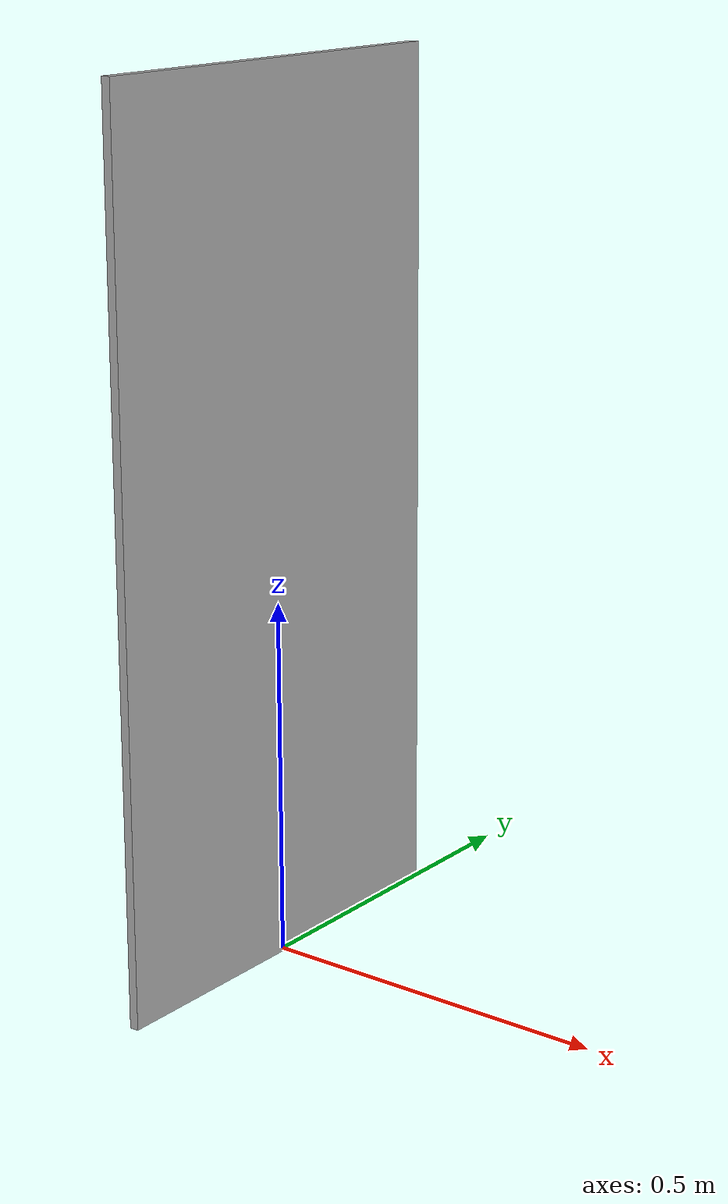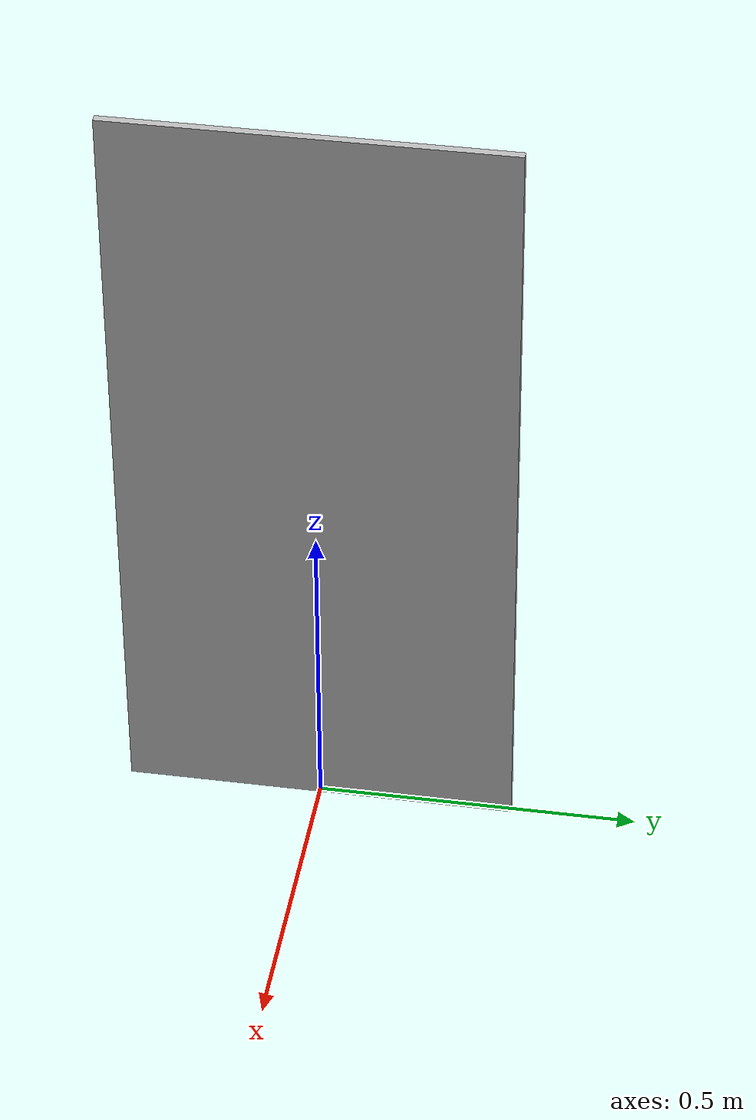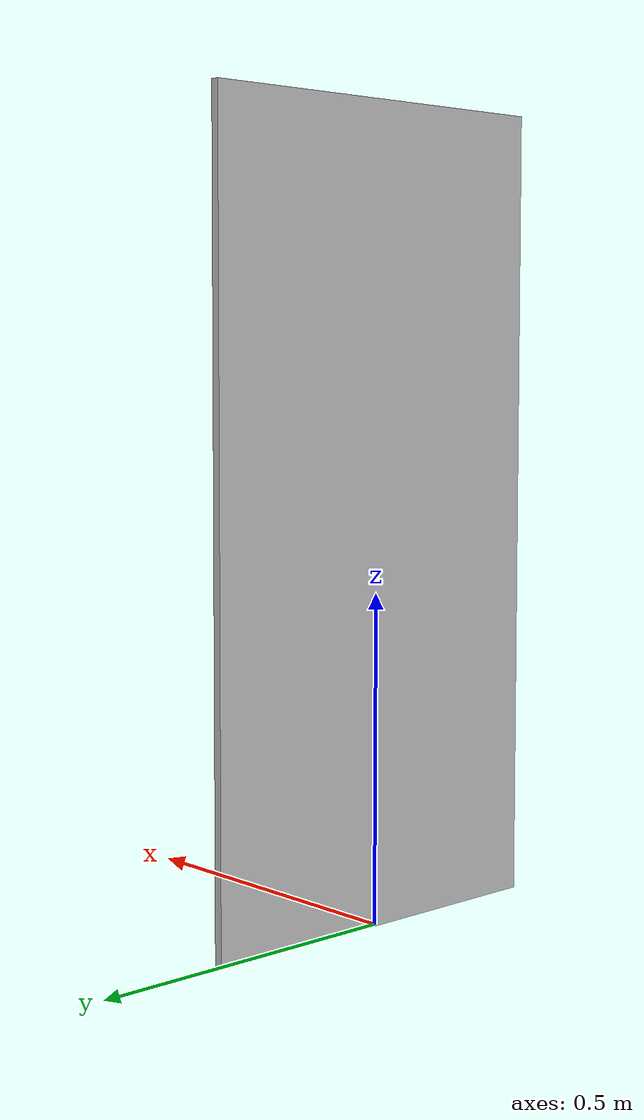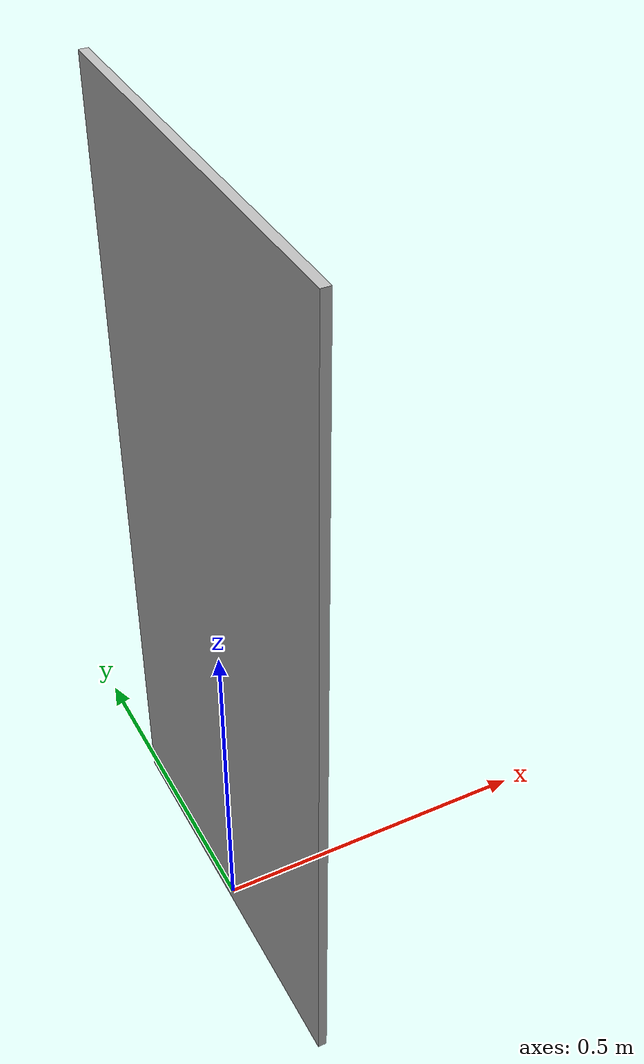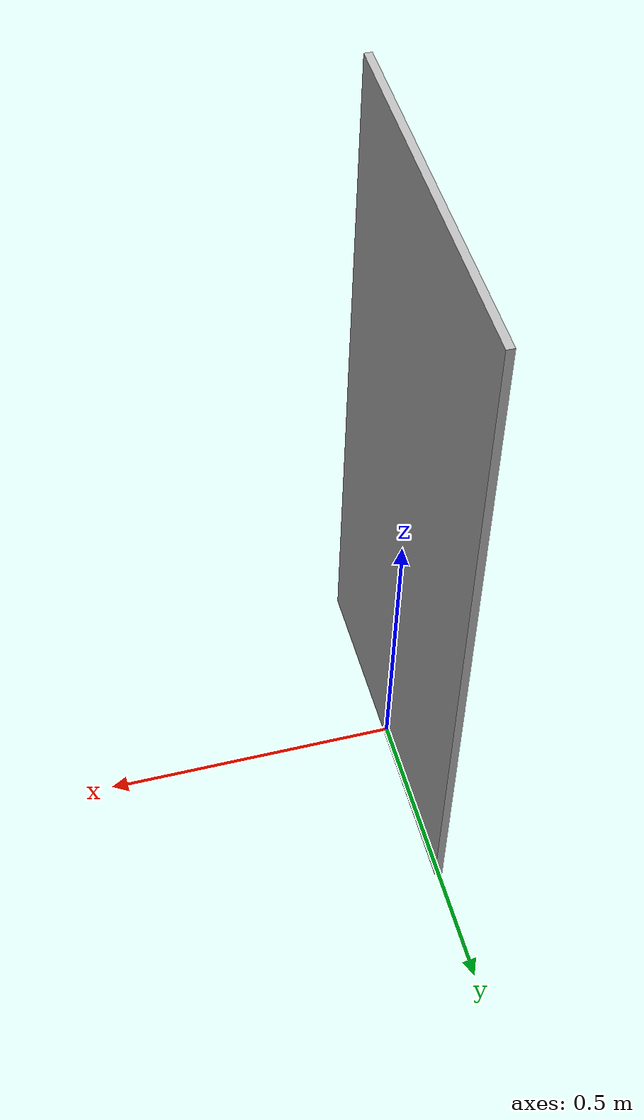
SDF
<?xml version="1.0" ?>
<sdf version="1.5">
  <model name="torpedo_target_bootlegger">
    <static>true</static>
    <link name="base_link">

      <collision name="collision">
        <pose>0 0 0 0 0 0</pose>
        <geometry>
          <mesh>
            <uri>model://torpedo_target_bootlegger/meshes/torpedo_target_bootlegger.dae</uri>
          </mesh>
        </geometry>
      </collision>

      <visual name="visual">
        <cast_shadows>true</cast_shadows>
        <pose>0 0 0 0 0 0</pose>
        <geometry>
          <mesh>
            <uri>model://torpedo_target_bootlegger/meshes/torpedo_target_bootlegger.dae</uri>
          </mesh>
        </geometry>
      </visual>
    </link>
  </model>
</sdf>
